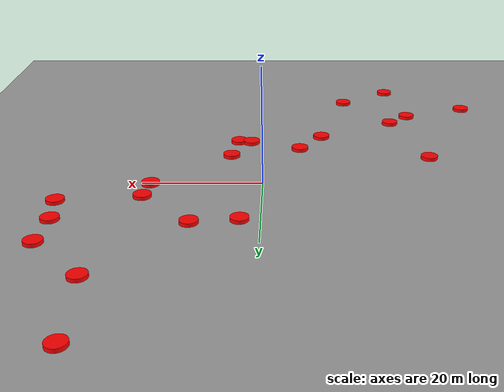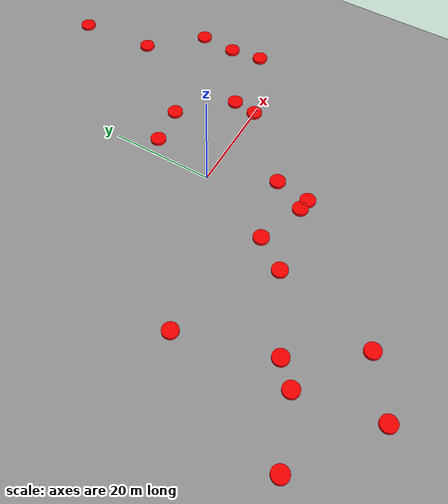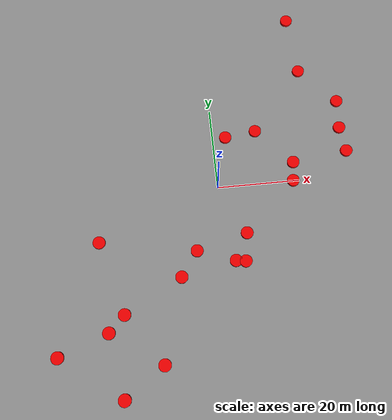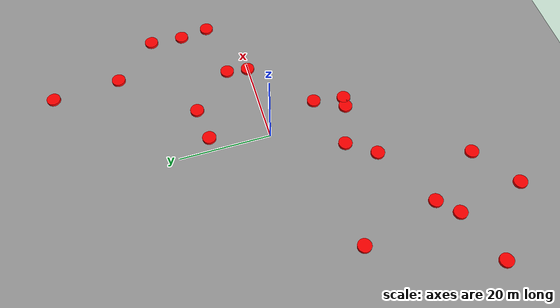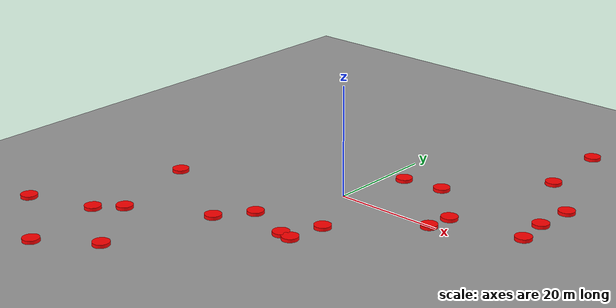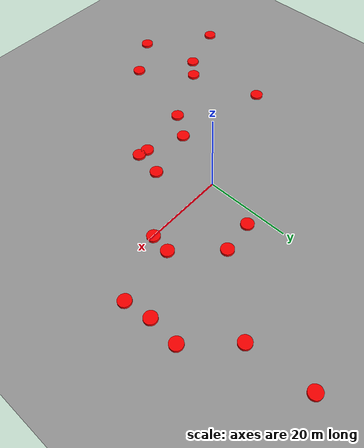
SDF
<sdf version="1.9">
 <world name="default">
  <model name="ground_plane">
   <static>true</static>
   <link name="link">
    <collision name="collision">
     <geometry><plane><normal>0 0 1</normal><size>100 100</size></plane></geometry>
     <surface><contact><collide_without_contact_bitmask>0x01</collide_without_contact_bitmask></contact></surface>
    </collision>
    <visual name="visual">
     <geometry><plane><normal>0 0 1</normal><size>100 100</size></plane></geometry>
     <material><ambient>0.6 0.6 0.6 1</ambient><diffuse>0.6 0.6 0.6 1</diffuse></material>
    </visual>
   </link>
  </model>
  <model name="moving_cylinder_0">
   <pose>-6.452755680776001 -14.963200562354935 0 0 0 0</pose>
   <link name="moving_link">
    <gravity>false</gravity>
    <visual name="visual">
     <geometry><cylinder><radius>1.5</radius><length>1.0</length></cylinder></geometry>
     <material><ambient>1 0 0 1</ambient></material>
    </visual>
   </link>
   <motion>
    <link_name>moving_link</link_name>
    <direction>-0.5225247423340349 0.8526241221363318 0</direction>
    <amplitude>20.0</amplitude>
    <speed>40.0</speed>
    <turnaround_threshold>0.5</turnaround_threshold>
   </motion>
  </model>
  <model name="moving_cylinder_1">
   <pose>-28.325920550706098 -31.912861048758163 0 0 0 0</pose>
   <link name="moving_link">
    <gravity>false</gravity>
    <visual name="visual">
     <geometry><cylinder><radius>1.5</radius><length>1.0</length></cylinder></geometry>
     <material><ambient>1 0 0 1</ambient></material>
    </visual>
   </link>
   <motion>
    <link_name>moving_link</link_name>
    <direction>-0.6469935380540992 0.7624954830792369 0</direction>
    <amplitude>20.0</amplitude>
    <speed>40.0</speed>
    <turnaround_threshold>0.5</turnaround_threshold>
   </motion>
  </model>
  <model name="moving_cylinder_2">
   <pose>2.505584774874979 -18.175661556951965 0 0 0 0</pose>
   <link name="moving_link">
    <gravity>false</gravity>
    <visual name="visual">
     <geometry><cylinder><radius>1.5</radius><length>1.0</length></cylinder></geometry>
     <material><ambient>1 0 0 1</ambient></material>
    </visual>
   </link>
   <motion>
    <link_name>moving_link</link_name>
    <direction>0.8476888318655906 -0.5304937740731275 0</direction>
    <amplitude>21.828255745031214</amplitude>
    <speed>40.0</speed>
    <turnaround_threshold>0.5</turnaround_threshold>
   </motion>
  </model>
  <model name="moving_cylinder_3">
   <pose>4.815013673572983 -18.52622271691256 0 0 0 0</pose>
   <link name="moving_link">
    <gravity>false</gravity>
    <visual name="visual">
     <geometry><cylinder><radius>1.5</radius><length>1.0</length></cylinder></geometry>
     <material><ambient>1 0 0 1</ambient></material>
    </visual>
   </link>
   <motion>
    <link_name>moving_link</link_name>
    <direction>0.26538659476455634 -0.964142082537254 0</direction>
    <amplitude>24.907251698170462</amplitude>
    <speed>40.0</speed>
    <turnaround_threshold>0.5</turnaround_threshold>
   </motion>
  </model>
  <model name="moving_cylinder_4">
   <pose>23.864498986024657 29.053849842885697 0 0 0 0</pose>
   <link name="moving_link">
    <gravity>false</gravity>
    <visual name="visual">
     <geometry><cylinder><radius>1.5</radius><length>1.0</length></cylinder></geometry>
     <material><ambient>1 0 0 1</ambient></material>
    </visual>
   </link>
   <motion>
    <link_name>moving_link</link_name>
    <direction>0.5763705992367413 -0.8171884313519616 0</direction>
    <amplitude>20.0</amplitude>
    <speed>40.0</speed>
    <turnaround_threshold>0.5</turnaround_threshold>
   </motion>
  </model>
  <model name="moving_cylinder_5">
   <pose>19.245938137500033 4.722462889729997 0 0 0 0</pose>
   <link name="moving_link">
    <gravity>false</gravity>
    <visual name="visual">
     <geometry><cylinder><radius>1.5</radius><length>1.0</length></cylinder></geometry>
     <material><ambient>1 0 0 1</ambient></material>
    </visual>
   </link>
   <motion>
    <link_name>moving_link</link_name>
    <direction>-0.30248678480173014 0.953153578926456 0</direction>
    <amplitude>25.00080547388687</amplitude>
    <speed>40.0</speed>
    <turnaround_threshold>0.5</turnaround_threshold>
   </motion>
  </model>
  <model name="moving_cylinder_6">
   <pose>18.615244594274028 0.04187506652286821 0 0 0 0</pose>
   <link name="moving_link">
    <gravity>false</gravity>
    <visual name="visual">
     <geometry><cylinder><radius>1.5</radius><length>1.0</length></cylinder></geometry>
     <material><ambient>1 0 0 1</ambient></material>
    </visual>
   </link>
   <motion>
    <link_name>moving_link</link_name>
    <direction>0.9045614312986643 -0.4263433088567379 0</direction>
    <amplitude>23.90687699512405</amplitude>
    <speed>40.0</speed>
    <turnaround_threshold>0.5</turnaround_threshold>
   </motion>
  </model>
  <model name="moving_cylinder_7">
   <pose>-10.613596012710344 -20.8086380299019 0 0 0 0</pose>
   <link name="moving_link">
    <gravity>false</gravity>
    <visual name="visual">
     <geometry><cylinder><radius>1.5</radius><length>1.0</length></cylinder></geometry>
     <material><ambient>1 0 0 1</ambient></material>
    </visual>
   </link>
   <motion>
    <link_name>moving_link</link_name>
    <direction>-0.4798238274233689 0.8773648583324893 0</direction>
    <amplitude>20.7621605549894</amplitude>
    <speed>40.0</speed>
    <turnaround_threshold>0.5</turnaround_threshold>
   </motion>
  </model>
  <model name="moving_cylinder_8">
   <pose>-16.115239543582202 -40.17665167002723 0 0 0 0</pose>
   <link name="moving_link">
    <gravity>false</gravity>
    <visual name="visual">
     <geometry><cylinder><radius>1.5</radius><length>1.0</length></cylinder></geometry>
     <material><ambient>1 0 0 1</ambient></material>
    </visual>
   </link>
   <motion>
    <link_name>moving_link</link_name>
    <direction>-0.6717802973138134 0.7407504520018632 0</direction>
    <amplitude>25.71579735070233</amplitude>
    <speed>40.0</speed>
    <turnaround_threshold>0.5</turnaround_threshold>
   </motion>
  </model>
  <model name="moving_cylinder_9">
   <pose>31.972217475543495 12.647502597955992 0 0 0 0</pose>
   <link name="moving_link">
    <gravity>false</gravity>
    <visual name="visual">
     <geometry><cylinder><radius>1.5</radius><length>1.0</length></cylinder></geometry>
     <material><ambient>1 0 0 1</ambient></material>
    </visual>
   </link>
   <motion>
    <link_name>moving_link</link_name>
    <direction>-0.9466451836846764 0.3222776694197183 0</direction>
    <amplitude>24.006035704735766</amplitude>
    <speed>40.0</speed>
    <turnaround_threshold>0.5</turnaround_threshold>
   </motion>
  </model>
  <model name="moving_cylinder_10">
   <pose>32.79104132123042 6.4060005755104985 0 0 0 0</pose>
   <link name="moving_link">
    <gravity>false</gravity>
    <visual name="visual">
     <geometry><cylinder><radius>1.5</radius><length>1.0</length></cylinder></geometry>
     <material><ambient>1 0 0 1</ambient></material>
    </visual>
   </link>
   <motion>
    <link_name>moving_link</link_name>
    <direction>-0.5179802752058884 0.8553925616333311 0</direction>
    <amplitude>30.50318374308067</amplitude>
    <speed>40.0</speed>
    <turnaround_threshold>0.5</turnaround_threshold>
   </motion>
  </model>
  <model name="moving_cylinder_11">
   <pose>-24.508244505643116 -28.153810435511648 0 0 0 0</pose>
   <link name="moving_link">
    <gravity>false</gravity>
    <visual name="visual">
     <geometry><cylinder><radius>1.5</radius><length>1.0</length></cylinder></geometry>
     <material><ambient>1 0 0 1</ambient></material>
    </visual>
   </link>
   <motion>
    <link_name>moving_link</link_name>
    <direction>0.48087988268912957 -0.8767864839428634 0</direction>
    <amplitude>20.0</amplitude>
    <speed>40.0</speed>
    <turnaround_threshold>0.5</turnaround_threshold>
   </motion>
  </model>
  <model name="moving_cylinder_12">
   <pose>22.764944672932383 43.86848556657395 0 0 0 0</pose>
   <link name="moving_link">
    <gravity>false</gravity>
    <visual name="visual">
     <geometry><cylinder><radius>1.5</radius><length>1.0</length></cylinder></geometry>
     <material><ambient>1 0 0 1</ambient></material>
    </visual>
   </link>
   <motion>
    <link_name>moving_link</link_name>
    <direction>0.7550621785221927 -0.655653190768809 0</direction>
    <amplitude>26.476843525890366</amplitude>
    <speed>40.0</speed>
    <turnaround_threshold>0.5</turnaround_threshold>
   </motion>
  </model>
  <model name="moving_cylinder_13">
   <pose>3.2298823213811803 12.801057675700777 0 0 0 0</pose>
   <link name="moving_link">
    <gravity>false</gravity>
    <visual name="visual">
     <geometry><cylinder><radius>1.5</radius><length>1.0</length></cylinder></geometry>
     <material><ambient>1 0 0 1</ambient></material>
    </visual>
   </link>
   <motion>
    <link_name>moving_link</link_name>
    <direction>0.6759904437646561 -0.7369103879976611 0</direction>
    <amplitude>20.0</amplitude>
    <speed>40.0</speed>
    <turnaround_threshold>0.5</turnaround_threshold>
   </motion>
  </model>
  <model name="moving_cylinder_14">
   <pose>5.8479193048696825 -11.834830997765497 0 0 0 0</pose>
   <link name="moving_link">
    <gravity>false</gravity>
    <visual name="visual">
     <geometry><cylinder><radius>1.5</radius><length>1.0</length></cylinder></geometry>
     <material><ambient>1 0 0 1</ambient></material>
    </visual>
   </link>
   <motion>
    <link_name>moving_link</link_name>
    <direction>0.6521781840252836 -0.7580657071003036 0</direction>
    <amplitude>20.0</amplitude>
    <speed>40.0</speed>
    <turnaround_threshold>0.5</turnaround_threshold>
   </motion>
  </model>
  <model name="moving_cylinder_15">
   <pose>-40.22479529541725 -36.19698106223167 0 0 0 0</pose>
   <link name="moving_link">
    <gravity>false</gravity>
    <visual name="visual">
     <geometry><cylinder><radius>1.5</radius><length>1.0</length></cylinder></geometry>
     <material><ambient>1 0 0 1</ambient></material>
    </visual>
   </link>
   <motion>
    <link_name>moving_link</link_name>
    <direction>0.3494644948148355 -0.9369496074303099 0</direction>
    <amplitude>20.0</amplitude>
    <speed>40.0</speed>
    <turnaround_threshold>0.5</turnaround_threshold>
   </motion>
  </model>
  <model name="moving_cylinder_16">
   <pose>32.42488418484014 19.801880350591503 0 0 0 0</pose>
   <link name="moving_link">
    <gravity>false</gravity>
    <visual name="visual">
     <geometry><cylinder><radius>1.5</radius><length>1.0</length></cylinder></geometry>
     <material><ambient>1 0 0 1</ambient></material>
    </visual>
   </link>
   <motion>
    <link_name>moving_link</link_name>
    <direction>0.7747739417015311 -0.632238356365914 0</direction>
    <amplitude>20.0</amplitude>
    <speed>40.0</speed>
    <turnaround_threshold>0.5</turnaround_threshold>
   </motion>
  </model>
  <model name="moving_cylinder_17">
   <pose>-25.591314693616184 -46.76632410783556 0 0 0 0</pose>
   <link name="moving_link">
    <gravity>false</gravity>
    <visual name="visual">
     <geometry><cylinder><radius>1.5</radius><length>1.0</length></cylinder></geometry>
     <material><ambient>1 0 0 1</ambient></material>
    </visual>
   </link>
   <motion>
    <link_name>moving_link</link_name>
    <direction>0.2704132871377731 -0.9627443347739546 0</direction>
    <amplitude>27.65898007505796</amplitude>
    <speed>40.0</speed>
    <turnaround_threshold>0.5</turnaround_threshold>
   </motion>
  </model>
  <model name="moving_cylinder_18">
   <pose>10.819003978435358 13.730043363996108 0 0 0 0</pose>
   <link name="moving_link">
    <gravity>false</gravity>
    <visual name="visual">
     <geometry><cylinder><radius>1.5</radius><length>1.0</length></cylinder></geometry>
     <material><ambient>1 0 0 1</ambient></material>
    </visual>
   </link>
   <motion>
    <link_name>moving_link</link_name>
    <direction>-0.4145259248113059 0.9100375034356175 0</direction>
    <amplitude>20.0</amplitude>
    <speed>40.0</speed>
    <turnaround_threshold>0.5</turnaround_threshold>
   </motion>
  </model>
  <model name="moving_cylinder_19">
   <pose>-29.491682578237004 -10.74571119616013 0 0 0 0</pose>
   <link name="moving_link">
    <gravity>false</gravity>
    <visual name="visual">
     <geometry><cylinder><radius>1.5</radius><length>1.0</length></cylinder></geometry>
     <material><ambient>1 0 0 1</ambient></material>
    </visual>
   </link>
   <motion>
    <link_name>moving_link</link_name>
    <direction>0.3646273236339034 -0.9311535398953154 0</direction>
    <amplitude>20.0</amplitude>
    <speed>40.0</speed>
    <turnaround_threshold>0.5</turnaround_threshold>
   </motion>
  </model>
 </world>
</sdf>
